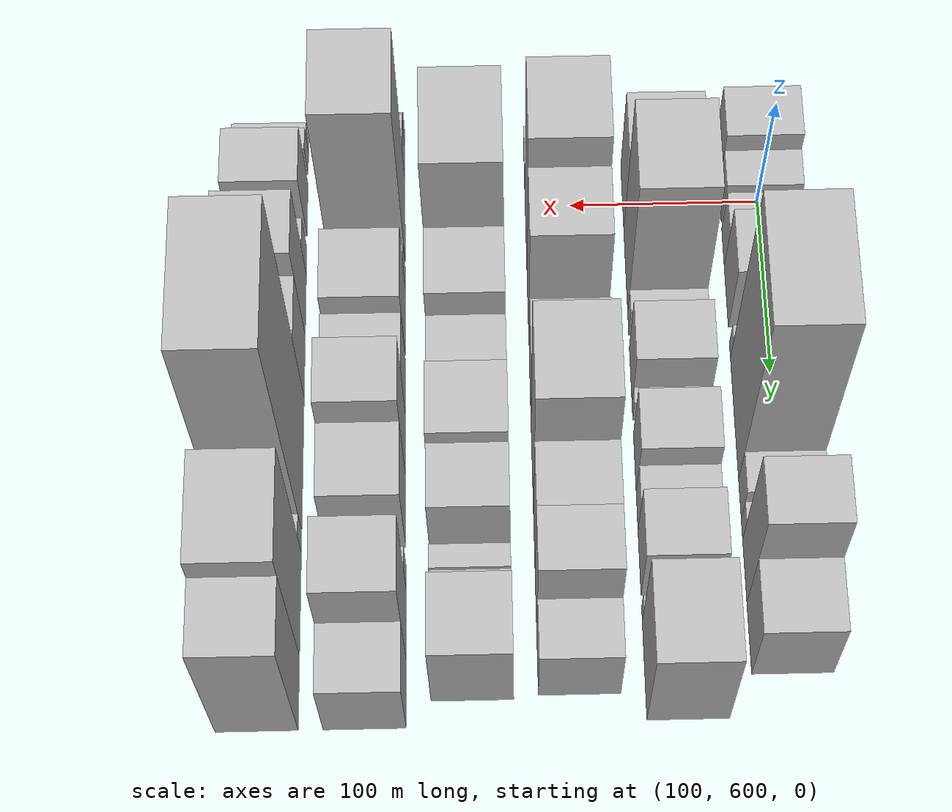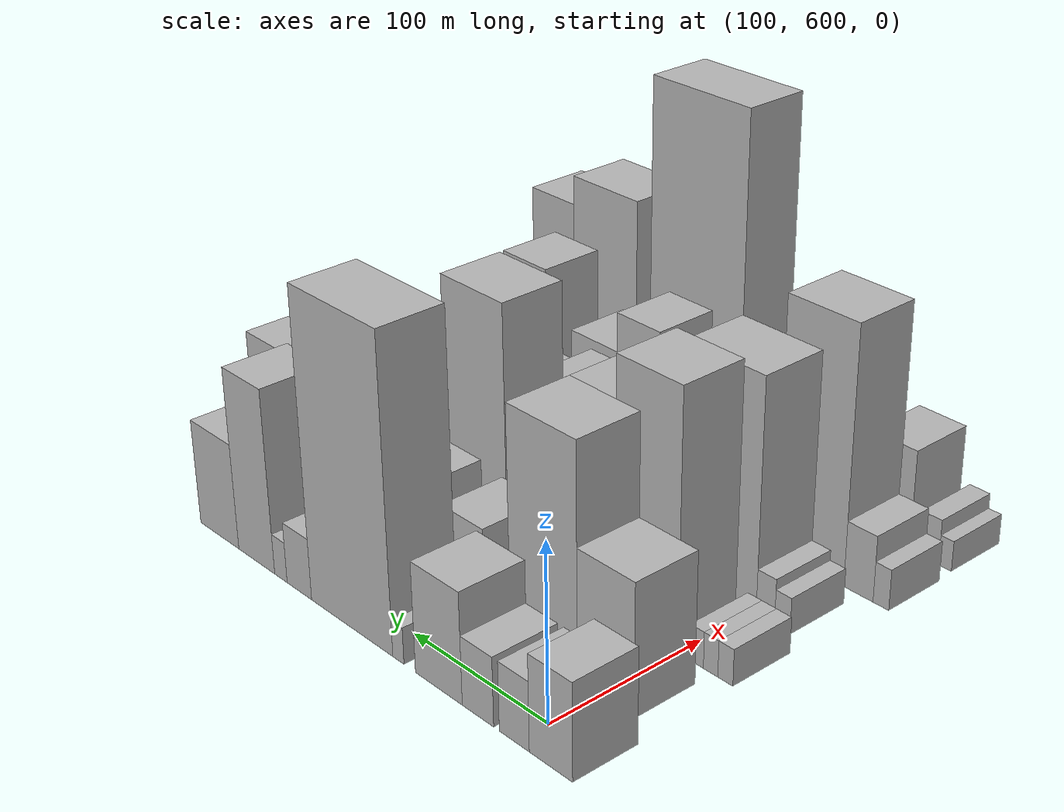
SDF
<sdf version="1.6">
 <world name="default">
  <model name="building_42">
   <static>1</static>
   <pose>100.0000 575.8657 0 0.000000 0.000000 0.000000</pose>
   <link name="link">
    <pose>0 0 27.00 0 0 0</pose>
    <collision name="collision"><geometry><box><size>40.0000 29.3480 54.0000</size></box></geometry></collision>
    <visual name="visual">
     <cast_shadows>0</cast_shadows>
     <geometry><box><size>40.0000 29.3480 54.0000</size></box></geometry>
     <material>
      <script>
       <uri>model://HANNAS_wall/materials/scripts</uri>
       <uri>model://HANNAS_wall/materials/textures</uri>
       <name>vrc/HANNAS_wall</name>
      </script>
     </material>
    </visual>
   </link>
  </model>
  <model name="building_43">
   <static>1</static>
   <pose>100.0000 601.0527 0 0.000000 0.000000 0.000000</pose>
   <link name="link">
    <pose>0 0 19.50 0 0 0</pose>
    <collision name="collision"><geometry><box><size>40.0000 21.0259 39.0000</size></box></geometry></collision>
    <visual name="visual">
     <cast_shadows>0</cast_shadows>
     <geometry><box><size>40.0000 21.0259 39.0000</size></box></geometry>
     <material>
      <script>
       <uri>model://HANNAS_wall/materials/scripts</uri>
       <uri>model://HANNAS_wall/materials/textures</uri>
       <name>vrc/HANNAS_wall</name>
      </script>
     </material>
    </visual>
   </link>
  </model>
  <model name="building_44">
   <static>1</static>
   <pose>100.0000 627.0009 0 0.000000 0.000000 0.000000</pose>
   <link name="link">
    <pose>0 0 19.50 0 0 0</pose>
    <collision name="collision"><geometry><box><size>40.0000 22.8707 39.0000</size></box></geometry></collision>
    <visual name="visual">
     <cast_shadows>0</cast_shadows>
     <geometry><box><size>40.0000 22.8707 39.0000</size></box></geometry>
     <material>
      <script>
       <uri>model://HANNAS_wall/materials/scripts</uri>
       <uri>model://HANNAS_wall/materials/textures</uri>
       <name>vrc/HANNAS_wall</name>
      </script>
     </material>
    </visual>
   </link>
  </model>
  <model name="building_45">
   <static>1</static>
   <pose>100.0000 656.1416 0 0.000000 0.000000 0.000000</pose>
   <link name="link">
    <pose>0 0 31.50 0 0 0</pose>
    <collision name="collision"><geometry><box><size>40.0000 35.4108 63.0000</size></box></geometry></collision>
    <visual name="visual">
     <cast_shadows>0</cast_shadows>
     <geometry><box><size>40.0000 35.4108 63.0000</size></box></geometry>
     <material>
      <script>
       <uri>model://HANNAS_wall/materials/scripts</uri>
       <uri>model://HANNAS_wall/materials/textures</uri>
       <name>vrc/HANNAS_wall</name>
      </script>
     </material>
    </visual>
   </link>
  </model>
  <model name="building_46">
   <static>1</static>
   <pose>100.0000 687.2384 0 0.000000 0.000000 0.000000</pose>
   <link name="link">
    <pose>0 0 10.50 0 0 0</pose>
    <collision name="collision"><geometry><box><size>40.0000 8.7828 21.0000</size></box></geometry></collision>
    <visual name="visual">
     <cast_shadows>0</cast_shadows>
     <geometry><box><size>40.0000 8.7828 21.0000</size></box></geometry>
     <material>
      <script>
       <uri>model://HANNAS_wall/materials/scripts</uri>
       <uri>model://HANNAS_wall/materials/textures</uri>
       <name>vrc/HANNAS_wall</name>
      </script>
     </material>
    </visual>
   </link>
  </model>
  <model name="building_47">
   <static>1</static>
   <pose>100.0000 725.3479 0 0.000000 0.000000 0.000000</pose>
   <link name="link">
    <pose>0 0 88.50 0 0 0</pose>
    <collision name="collision"><geometry><box><size>40.0000 67.4363 177.0000</size></box></geometry></collision>
    <visual name="visual">
     <cast_shadows>0</cast_shadows>
     <geometry><box><size>40.0000 67.4363 177.0000</size></box></geometry>
     <material>
      <script>
       <uri>model://HANNAS_wall/materials/scripts</uri>
       <uri>model://HANNAS_wall/materials/textures</uri>
       <name>vrc/HANNAS_wall</name>
      </script>
     </material>
    </visual>
   </link>
  </model>
  <model name="building_48">
   <static>1</static>
   <pose>100.0000 769.8377 0 0.000000 0.000000 0.000000</pose>
   <link name="link">
    <pose>0 0 18.00 0 0 0</pose>
    <collision name="collision"><geometry><box><size>40.0000 21.5433 36.0000</size></box></geometry></collision>
    <visual name="visual">
     <cast_shadows>0</cast_shadows>
     <geometry><box><size>40.0000 21.5433 36.0000</size></box></geometry>
     <material>
      <script>
       <uri>model://HANNAS_wall/materials/scripts</uri>
       <uri>model://HANNAS_wall/materials/textures</uri>
       <name>vrc/HANNAS_wall</name>
      </script>
     </material>
    </visual>
   </link>
  </model>
  <model name="building_49">
   <static>1</static>
   <pose>100.0000 786.1714 0 0.000000 0.000000 0.000000</pose>
   <link name="link">
    <pose>0 0 12.00 0 0 0</pose>
    <collision name="collision"><geometry><box><size>40.0000 11.1240 24.0000</size></box></geometry></collision>
    <visual name="visual">
     <cast_shadows>0</cast_shadows>
     <geometry><box><size>40.0000 11.1240 24.0000</size></box></geometry>
     <material>
      <script>
       <uri>model://HANNAS_wall/materials/scripts</uri>
       <uri>model://HANNAS_wall/materials/textures</uri>
       <name>vrc/HANNAS_wall</name>
      </script>
     </material>
    </visual>
   </link>
  </model>
  <model name="building_50">
   <static>1</static>
   <pose>100.0000 808.2883 0 0.000000 0.000000 0.000000</pose>
   <link name="link">
    <pose>0 0 54.00 0 0 0</pose>
    <collision name="collision"><geometry><box><size>40.0000 33.1097 108.0000</size></box></geometry></collision>
    <visual name="visual">
     <cast_shadows>0</cast_shadows>
     <geometry><box><size>40.0000 33.1097 108.0000</size></box></geometry>
     <material>
      <script>
       <uri>model://HANNAS_wall/materials/scripts</uri>
       <uri>model://HANNAS_wall/materials/textures</uri>
       <name>vrc/HANNAS_wall</name>
      </script>
     </material>
    </visual>
   </link>
  </model>
  <model name="building_51">
   <static>1</static>
   <pose>100.0000 843.0996 0 0.000000 0.000000 0.000000</pose>
   <link name="link">
    <pose>0 0 31.50 0 0 0</pose>
    <collision name="collision"><geometry><box><size>40.0000 36.5130 63.0000</size></box></geometry></collision>
    <visual name="visual">
     <cast_shadows>0</cast_shadows>
     <geometry><box><size>40.0000 36.5130 63.0000</size></box></geometry>
     <material>
      <script>
       <uri>model://HANNAS_wall/materials/scripts</uri>
       <uri>model://HANNAS_wall/materials/textures</uri>
       <name>vrc/HANNAS_wall</name>
      </script>
     </material>
    </visual>
   </link>
  </model>
  <model name="building_91">
   <static>1</static>
   <pose>152.0000 595.9868 0 0.000000 0.000000 0.000000</pose>
   <link name="link">
    <pose>0 0 37.50 0 0 0</pose>
    <collision name="collision"><geometry><box><size>40.0000 39.2397 75.0000</size></box></geometry></collision>
    <visual name="visual">
     <cast_shadows>0</cast_shadows>
     <geometry><box><size>40.0000 39.2397 75.0000</size></box></geometry>
     <material>
      <script>
       <uri>model://HANNAS_wall/materials/scripts</uri>
       <uri>model://HANNAS_wall/materials/textures</uri>
       <name>vrc/HANNAS_wall</name>
      </script>
     </material>
    </visual>
   </link>
  </model>
  <model name="building_92">
   <static>1</static>
   <pose>152.0000 640.0116 0 0.000000 0.000000 0.000000</pose>
   <link name="link">
    <pose>0 0 66.00 0 0 0</pose>
    <collision name="collision"><geometry><box><size>40.0000 48.8098 132.0000</size></box></geometry></collision>
    <visual name="visual">
     <cast_shadows>0</cast_shadows>
     <geometry><box><size>40.0000 48.8098 132.0000</size></box></geometry>
     <material>
      <script>
       <uri>model://HANNAS_wall/materials/scripts</uri>
       <uri>model://HANNAS_wall/materials/textures</uri>
       <name>vrc/HANNAS_wall</name>
      </script>
     </material>
    </visual>
   </link>
  </model>
  <model name="building_93">
   <static>1</static>
   <pose>152.0000 670.8228 0 0.000000 0.000000 0.000000</pose>
   <link name="link">
    <pose>0 0 13.50 0 0 0</pose>
    <collision name="collision"><geometry><box><size>40.0000 12.8127 27.0000</size></box></geometry></collision>
    <visual name="visual">
     <cast_shadows>0</cast_shadows>
     <geometry><box><size>40.0000 12.8127 27.0000</size></box></geometry>
     <material>
      <script>
       <uri>model://HANNAS_wall/materials/scripts</uri>
       <uri>model://HANNAS_wall/materials/textures</uri>
       <name>vrc/HANNAS_wall</name>
      </script>
     </material>
    </visual>
   </link>
  </model>
  <model name="building_94">
   <static>1</static>
   <pose>152.0000 700.2923 0 0.000000 0.000000 0.000000</pose>
   <link name="link">
    <pose>0 0 27.00 0 0 0</pose>
    <collision name="collision"><geometry><box><size>40.0000 32.1263 54.0000</size></box></geometry></collision>
    <visual name="visual">
     <cast_shadows>0</cast_shadows>
     <geometry><box><size>40.0000 32.1263 54.0000</size></box></geometry>
     <material>
      <script>
       <uri>model://HANNAS_wall/materials/scripts</uri>
       <uri>model://HANNAS_wall/materials/textures</uri>
       <name>vrc/HANNAS_wall</name>
      </script>
     </material>
    </visual>
   </link>
  </model>
  <model name="building_95">
   <static>1</static>
   <pose>152.0000 720.7714 0 0.000000 0.000000 0.000000</pose>
   <link name="link">
    <pose>0 0 10.50 0 0 0</pose>
    <collision name="collision"><geometry><box><size>40.0000 8.8319 21.0000</size></box></geometry></collision>
    <visual name="visual">
     <cast_shadows>0</cast_shadows>
     <geometry><box><size>40.0000 8.8319 21.0000</size></box></geometry>
     <material>
      <script>
       <uri>model://HANNAS_wall/materials/scripts</uri>
       <uri>model://HANNAS_wall/materials/textures</uri>
       <name>vrc/HANNAS_wall</name>
      </script>
     </material>
    </visual>
   </link>
  </model>
  <model name="building_96">
   <static>1</static>
   <pose>152.0000 749.2084 0 0.000000 0.000000 0.000000</pose>
   <link name="link">
    <pose>0 0 28.50 0 0 0</pose>
    <collision name="collision"><geometry><box><size>40.0000 32.0421 57.0000</size></box></geometry></collision>
    <visual name="visual">
     <cast_shadows>0</cast_shadows>
     <geometry><box><size>40.0000 32.0421 57.0000</size></box></geometry>
     <material>
      <script>
       <uri>model://HANNAS_wall/materials/scripts</uri>
       <uri>model://HANNAS_wall/materials/textures</uri>
       <name>vrc/HANNAS_wall</name>
      </script>
     </material>
    </visual>
   </link>
  </model>
  <model name="building_97">
   <static>1</static>
   <pose>152.0000 775.6037 0 0.000000 0.000000 0.000000</pose>
   <link name="link">
    <pose>0 0 18.00 0 0 0</pose>
    <collision name="collision"><geometry><box><size>40.0000 20.7485 36.0000</size></box></geometry></collision>
    <visual name="visual">
     <cast_shadows>0</cast_shadows>
     <geometry><box><size>40.0000 20.7485 36.0000</size></box></geometry>
     <material>
      <script>
       <uri>model://HANNAS_wall/materials/scripts</uri>
       <uri>model://HANNAS_wall/materials/textures</uri>
       <name>vrc/HANNAS_wall</name>
      </script>
     </material>
    </visual>
   </link>
  </model>
  <model name="building_98">
   <static>1</static>
   <pose>152.0000 802.9114 0 0.000000 0.000000 0.000000</pose>
   <link name="link">
    <pose>0 0 28.50 0 0 0</pose>
    <collision name="collision"><geometry><box><size>40.0000 33.8669 57.0000</size></box></geometry></collision>
    <visual name="visual">
     <cast_shadows>0</cast_shadows>
     <geometry><box><size>40.0000 33.8669 57.0000</size></box></geometry>
     <material>
      <script>
       <uri>model://HANNAS_wall/materials/scripts</uri>
       <uri>model://HANNAS_wall/materials/textures</uri>
       <name>vrc/HANNAS_wall</name>
      </script>
     </material>
    </visual>
   </link>
  </model>
  <model name="building_99">
   <static>1</static>
   <pose>152.0000 829.7463 0 0.000000 0.000000 0.000000</pose>
   <link name="link">
    <pose>0 0 9.00 0 0 0</pose>
    <collision name="collision"><geometry><box><size>40.0000 7.8029 18.0000</size></box></geometry></collision>
    <visual name="visual">
     <cast_shadows>0</cast_shadows>
     <geometry><box><size>40.0000 7.8029 18.0000</size></box></geometry>
     <material>
      <script>
       <uri>model://HANNAS_wall/materials/scripts</uri>
       <uri>model://HANNAS_wall/materials/textures</uri>
       <name>vrc/HANNAS_wall</name>
      </script>
     </material>
    </visual>
   </link>
  </model>
  <model name="building_100">
   <static>1</static>
   <pose>152.0000 858.4060 0 0.000000 0.000000 0.000000</pose>
   <link name="link">
    <pose>0 0 45.00 0 0 0</pose>
    <collision name="collision"><geometry><box><size>40.0000 49.5165 90.0000</size></box></geometry></collision>
    <visual name="visual">
     <cast_shadows>0</cast_shadows>
     <geometry><box><size>40.0000 49.5165 90.0000</size></box></geometry>
     <material>
      <script>
       <uri>model://HANNAS_wall/materials/scripts</uri>
       <uri>model://HANNAS_wall/materials/textures</uri>
       <name>vrc/HANNAS_wall</name>
      </script>
     </material>
    </visual>
   </link>
  </model>
  <model name="building_141">
   <static>1</static>
   <pose>204.0000 567.9063 0 0.000000 0.000000 0.000000</pose>
   <link name="link">
    <pose>0 0 10.50 0 0 0</pose>
    <collision name="collision"><geometry><box><size>40.0000 9.9896 21.0000</size></box></geometry></collision>
    <visual name="visual">
     <cast_shadows>0</cast_shadows>
     <geometry><box><size>40.0000 9.9896 21.0000</size></box></geometry>
     <material>
      <script>
       <uri>model://HANNAS_wall/materials/scripts</uri>
       <uri>model://HANNAS_wall/materials/textures</uri>
       <name>vrc/HANNAS_wall</name>
      </script>
     </material>
    </visual>
   </link>
  </model>
  <model name="building_142">
   <static>1</static>
   <pose>204.0000 577.7496 0 0.000000 0.000000 0.000000</pose>
   <link name="link">
    <pose>0 0 10.50 0 0 0</pose>
    <collision name="collision"><geometry><box><size>40.0000 9.6970 21.0000</size></box></geometry></collision>
    <visual name="visual">
     <cast_shadows>0</cast_shadows>
     <geometry><box><size>40.0000 9.6970 21.0000</size></box></geometry>
     <material>
      <script>
       <uri>model://HANNAS_wall/materials/scripts</uri>
       <uri>model://HANNAS_wall/materials/textures</uri>
       <name>vrc/HANNAS_wall</name>
      </script>
     </material>
    </visual>
   </link>
  </model>
  <model name="building_143">
   <static>1</static>
   <pose>204.0000 587.3101 0 0.000000 0.000000 0.000000</pose>
   <link name="link">
    <pose>0 0 10.50 0 0 0</pose>
    <collision name="collision"><geometry><box><size>40.0000 9.4239 21.0000</size></box></geometry></collision>
    <visual name="visual">
     <cast_shadows>0</cast_shadows>
     <geometry><box><size>40.0000 9.4239 21.0000</size></box></geometry>
     <material>
      <script>
       <uri>model://HANNAS_wall/materials/scripts</uri>
       <uri>model://HANNAS_wall/materials/textures</uri>
       <name>vrc/HANNAS_wall</name>
      </script>
     </material>
    </visual>
   </link>
  </model>
  <model name="building_144">
   <static>1</static>
   <pose>204.0000 622.4460 0 0.000000 0.000000 0.000000</pose>
   <link name="link">
    <pose>0 0 73.50 0 0 0</pose>
    <collision name="collision"><geometry><box><size>40.0000 44.8478 147.0000</size></box></geometry></collision>
    <visual name="visual">
     <cast_shadows>0</cast_shadows>
     <geometry><box><size>40.0000 44.8478 147.0000</size></box></geometry>
     <material>
      <script>
       <uri>model://HANNAS_wall/materials/scripts</uri>
       <uri>model://HANNAS_wall/materials/textures</uri>
       <name>vrc/HANNAS_wall</name>
      </script>
     </material>
    </visual>
   </link>
  </model>
  <model name="building_145">
   <static>1</static>
   <pose>204.0000 663.4067 0 0.000000 0.000000 0.000000</pose>
   <link name="link">
    <pose>0 0 60.00 0 0 0</pose>
    <collision name="collision"><geometry><box><size>40.0000 37.0736 120.0000</size></box></geometry></collision>
    <visual name="visual">
     <cast_shadows>0</cast_shadows>
     <geometry><box><size>40.0000 37.0736 120.0000</size></box></geometry>
     <material>
      <script>
       <uri>model://HANNAS_wall/materials/scripts</uri>
       <uri>model://HANNAS_wall/materials/textures</uri>
       <name>vrc/HANNAS_wall</name>
      </script>
     </material>
    </visual>
   </link>
  </model>
  <model name="building_146">
   <static>1</static>
   <pose>204.0000 706.4020 0 0.000000 0.000000 0.000000</pose>
   <link name="link">
    <pose>0 0 33.00 0 0 0</pose>
    <collision name="collision"><geometry><box><size>40.0000 36.9171 66.0000</size></box></geometry></collision>
    <visual name="visual">
     <cast_shadows>0</cast_shadows>
     <geometry><box><size>40.0000 36.9171 66.0000</size></box></geometry>
     <material>
      <script>
       <uri>model://HANNAS_wall/materials/scripts</uri>
       <uri>model://HANNAS_wall/materials/textures</uri>
       <name>vrc/HANNAS_wall</name>
      </script>
     </material>
    </visual>
   </link>
  </model>
  <model name="building_147">
   <static>1</static>
   <pose>204.0000 752.2710 0 0.000000 0.000000 0.000000</pose>
   <link name="link">
    <pose>0 0 72.00 0 0 0</pose>
    <collision name="collision"><geometry><box><size>40.0000 48.8209 144.0000</size></box></geometry></collision>
    <visual name="visual">
     <cast_shadows>0</cast_shadows>
     <geometry><box><size>40.0000 48.8209 144.0000</size></box></geometry>
     <material>
      <script>
       <uri>model://HANNAS_wall/materials/scripts</uri>
       <uri>model://HANNAS_wall/materials/textures</uri>
       <name>vrc/HANNAS_wall</name>
      </script>
     </material>
    </visual>
   </link>
  </model>
  <model name="building_148">
   <static>1</static>
   <pose>204.0000 792.6814 0 0.000000 0.000000 0.000000</pose>
   <link name="link">
    <pose>0 0 48.00 0 0 0</pose>
    <collision name="collision"><geometry><box><size>40.0000 32.0000 96.0000</size></box></geometry></collision>
    <visual name="visual">
     <cast_shadows>0</cast_shadows>
     <geometry><box><size>40.0000 32.0000 96.0000</size></box></geometry>
     <material>
      <script>
       <uri>model://HANNAS_wall/materials/scripts</uri>
       <uri>model://HANNAS_wall/materials/textures</uri>
       <name>vrc/HANNAS_wall</name>
      </script>
     </material>
    </visual>
   </link>
  </model>
  <model name="building_149">
   <static>1</static>
   <pose>204.0000 824.4551 0 0.000000 0.000000 0.000000</pose>
   <link name="link">
    <pose>0 0 48.00 0 0 0</pose>
    <collision name="collision"><geometry><box><size>40.0000 31.5474 96.0000</size></box></geometry></collision>
    <visual name="visual">
     <cast_shadows>0</cast_shadows>
     <geometry><box><size>40.0000 31.5474 96.0000</size></box></geometry>
     <material>
      <script>
       <uri>model://HANNAS_wall/materials/scripts</uri>
       <uri>model://HANNAS_wall/materials/textures</uri>
       <name>vrc/HANNAS_wall</name>
      </script>
     </material>
    </visual>
   </link>
  </model>
  <model name="building_150">
   <static>1</static>
   <pose>204.0000 854.9163 0 0.000000 0.000000 0.000000</pose>
   <link name="link">
    <pose>0 0 28.50 0 0 0</pose>
    <collision name="collision"><geometry><box><size>40.0000 29.3750 57.0000</size></box></geometry></collision>
    <visual name="visual">
     <cast_shadows>0</cast_shadows>
     <geometry><box><size>40.0000 29.3750 57.0000</size></box></geometry>
     <material>
      <script>
       <uri>model://HANNAS_wall/materials/scripts</uri>
       <uri>model://HANNAS_wall/materials/textures</uri>
       <name>vrc/HANNAS_wall</name>
      </script>
     </material>
    </visual>
   </link>
  </model>
  <model name="building_191">
   <static>1</static>
   <pose>256.0000 579.0800 0 0.000000 0.000000 0.000000</pose>
   <link name="link">
    <pose>0 0 10.50 0 0 0</pose>
    <collision name="collision"><geometry><box><size>40.0000 10.4534 21.0000</size></box></geometry></collision>
    <visual name="visual">
     <cast_shadows>0</cast_shadows>
     <geometry><box><size>40.0000 10.4534 21.0000</size></box></geometry>
     <material>
      <script>
       <uri>model://HANNAS_wall/materials/scripts</uri>
       <uri>model://HANNAS_wall/materials/textures</uri>
       <name>vrc/HANNAS_wall</name>
      </script>
     </material>
    </visual>
   </link>
  </model>
  <model name="building_192">
   <static>1</static>
   <pose>256.0000 590.5890 0 0.000000 0.000000 0.000000</pose>
   <link name="link">
    <pose>0 0 13.50 0 0 0</pose>
    <collision name="collision"><geometry><box><size>40.0000 12.5645 27.0000</size></box></geometry></collision>
    <visual name="visual">
     <cast_shadows>0</cast_shadows>
     <geometry><box><size>40.0000 12.5645 27.0000</size></box></geometry>
     <material>
      <script>
       <uri>model://HANNAS_wall/materials/scripts</uri>
       <uri>model://HANNAS_wall/materials/textures</uri>
       <name>vrc/HANNAS_wall</name>
      </script>
     </material>
    </visual>
   </link>
  </model>
  <model name="building_193">
   <static>1</static>
   <pose>256.0000 623.5789 0 0.000000 0.000000 0.000000</pose>
   <link name="link">
    <pose>0 0 67.50 0 0 0</pose>
    <collision name="collision"><geometry><box><size>40.0000 53.4153 135.0000</size></box></geometry></collision>
    <visual name="visual">
     <cast_shadows>0</cast_shadows>
     <geometry><box><size>40.0000 53.4153 135.0000</size></box></geometry>
     <material>
      <script>
       <uri>model://HANNAS_wall/materials/scripts</uri>
       <uri>model://HANNAS_wall/materials/textures</uri>
       <name>vrc/HANNAS_wall</name>
      </script>
     </material>
    </visual>
   </link>
  </model>
  <model name="building_194">
   <static>1</static>
   <pose>256.0000 668.5747 0 0.000000 0.000000 0.000000</pose>
   <link name="link">
    <pose>0 0 36.00 0 0 0</pose>
    <collision name="collision"><geometry><box><size>40.0000 36.5762 72.0000</size></box></geometry></collision>
    <visual name="visual">
     <cast_shadows>0</cast_shadows>
     <geometry><box><size>40.0000 36.5762 72.0000</size></box></geometry>
     <material>
      <script>
       <uri>model://HANNAS_wall/materials/scripts</uri>
       <uri>model://HANNAS_wall/materials/textures</uri>
       <name>vrc/HANNAS_wall</name>
      </script>
     </material>
    </visual>
   </link>
  </model>
  <model name="building_195">
   <static>1</static>
   <pose>256.0000 699.4970 0 0.000000 0.000000 0.000000</pose>
   <link name="link">
    <pose>0 0 24.00 0 0 0</pose>
    <collision name="collision"><geometry><box><size>40.0000 25.2684 48.0000</size></box></geometry></collision>
    <visual name="visual">
     <cast_shadows>0</cast_shadows>
     <geometry><box><size>40.0000 25.2684 48.0000</size></box></geometry>
     <material>
      <script>
       <uri>model://HANNAS_wall/materials/scripts</uri>
       <uri>model://HANNAS_wall/materials/textures</uri>
       <name>vrc/HANNAS_wall</name>
      </script>
     </material>
    </visual>
   </link>
  </model>
  <model name="building_196">
   <static>1</static>
   <pose>256.0000 720.9371 0 0.000000 0.000000 0.000000</pose>
   <link name="link">
    <pose>0 0 9.00 0 0 0</pose>
    <collision name="collision"><geometry><box><size>40.0000 7.6116 18.0000</size></box></geometry></collision>
    <visual name="visual">
     <cast_shadows>0</cast_shadows>
     <geometry><box><size>40.0000 7.6116 18.0000</size></box></geometry>
     <material>
      <script>
       <uri>model://HANNAS_wall/materials/scripts</uri>
       <uri>model://HANNAS_wall/materials/textures</uri>
       <name>vrc/HANNAS_wall</name>
      </script>
     </material>
    </visual>
   </link>
  </model>
  <model name="building_197">
   <static>1</static>
   <pose>256.0000 743.6201 0 0.000000 0.000000 0.000000</pose>
   <link name="link">
    <pose>0 0 37.50 0 0 0</pose>
    <collision name="collision"><geometry><box><size>40.0000 37.7544 75.0000</size></box></geometry></collision>
    <visual name="visual">
     <cast_shadows>0</cast_shadows>
     <geometry><box><size>40.0000 37.7544 75.0000</size></box></geometry>
     <material>
      <script>
       <uri>model://HANNAS_wall/materials/scripts</uri>
       <uri>model://HANNAS_wall/materials/textures</uri>
       <name>vrc/HANNAS_wall</name>
      </script>
     </material>
    </visual>
   </link>
  </model>
  <model name="building_198">
   <static>1</static>
   <pose>256.0000 779.0119 0 0.000000 0.000000 0.000000</pose>
   <link name="link">
    <pose>0 0 31.50 0 0 0</pose>
    <collision name="collision"><geometry><box><size>40.0000 33.0291 63.0000</size></box></geometry></collision>
    <visual name="visual">
     <cast_shadows>0</cast_shadows>
     <geometry><box><size>40.0000 33.0291 63.0000</size></box></geometry>
     <material>
      <script>
       <uri>model://HANNAS_wall/materials/scripts</uri>
       <uri>model://HANNAS_wall/materials/textures</uri>
       <name>vrc/HANNAS_wall</name>
      </script>
     </material>
    </visual>
   </link>
  </model>
  <model name="building_199">
   <static>1</static>
   <pose>256.0000 806.6822 0 0.000000 0.000000 0.000000</pose>
   <link name="link">
    <pose>0 0 13.50 0 0 0</pose>
    <collision name="collision"><geometry><box><size>40.0000 12.3115 27.0000</size></box></geometry></collision>
    <visual name="visual">
     <cast_shadows>0</cast_shadows>
     <geometry><box><size>40.0000 12.3115 27.0000</size></box></geometry>
     <material>
      <script>
       <uri>model://HANNAS_wall/materials/scripts</uri>
       <uri>model://HANNAS_wall/materials/textures</uri>
       <name>vrc/HANNAS_wall</name>
      </script>
     </material>
    </visual>
   </link>
  </model>
  <model name="building_200">
   <static>1</static>
   <pose>256.0000 818.4811 0 0.000000 0.000000 0.000000</pose>
   <link name="link">
    <pose>0 0 12.00 0 0 0</pose>
    <collision name="collision"><geometry><box><size>40.0000 11.2862 24.0000</size></box></geometry></collision>
    <visual name="visual">
     <cast_shadows>0</cast_shadows>
     <geometry><box><size>40.0000 11.2862 24.0000</size></box></geometry>
     <material>
      <script>
       <uri>model://HANNAS_wall/materials/scripts</uri>
       <uri>model://HANNAS_wall/materials/textures</uri>
       <name>vrc/HANNAS_wall</name>
      </script>
     </material>
    </visual>
   </link>
  </model>
  <model name="building_201">
   <static>1</static>
   <pose>256.0000 851.2816 0 0.000000 0.000000 0.000000</pose>
   <link name="link">
    <pose>0 0 36.00 0 0 0</pose>
    <collision name="collision"><geometry><box><size>40.0000 40.3148 72.0000</size></box></geometry></collision>
    <visual name="visual">
     <cast_shadows>0</cast_shadows>
     <geometry><box><size>40.0000 40.3148 72.0000</size></box></geometry>
     <material>
      <script>
       <uri>model://HANNAS_wall/materials/scripts</uri>
       <uri>model://HANNAS_wall/materials/textures</uri>
       <name>vrc/HANNAS_wall</name>
      </script>
     </material>
    </visual>
   </link>
  </model>
  <model name="building_240">
   <static>1</static>
   <pose>308.0000 559.5195 0 0.000000 0.000000 0.000000</pose>
   <link name="link">
    <pose>0 0 12.00 0 0 0</pose>
    <collision name="collision"><geometry><box><size>40.0000 10.3501 24.0000</size></box></geometry></collision>
    <visual name="visual">
     <cast_shadows>0</cast_shadows>
     <geometry><box><size>40.0000 10.3501 24.0000</size></box></geometry>
     <material>
      <script>
       <uri>model://HANNAS_wall/materials/scripts</uri>
       <uri>model://HANNAS_wall/materials/textures</uri>
       <name>vrc/HANNAS_wall</name>
      </script>
     </material>
    </visual>
   </link>
  </model>
  <model name="building_241">
   <static>1</static>
   <pose>308.0000 574.4995 0 0.000000 0.000000 0.000000</pose>
   <link name="link">
    <pose>0 0 19.50 0 0 0</pose>
    <collision name="collision"><geometry><box><size>40.0000 19.6100 39.0000</size></box></geometry></collision>
    <visual name="visual">
     <cast_shadows>0</cast_shadows>
     <geometry><box><size>40.0000 19.6100 39.0000</size></box></geometry>
     <material>
      <script>
       <uri>model://HANNAS_wall/materials/scripts</uri>
       <uri>model://HANNAS_wall/materials/textures</uri>
       <name>vrc/HANNAS_wall</name>
      </script>
     </material>
    </visual>
   </link>
  </model>
  <model name="building_242">
   <static>1</static>
   <pose>308.0000 607.8872 0 0.000000 0.000000 0.000000</pose>
   <link name="link">
    <pose>0 0 75.00 0 0 0</pose>
    <collision name="collision"><geometry><box><size>40.0000 47.1655 150.0000</size></box></geometry></collision>
    <visual name="visual">
     <cast_shadows>0</cast_shadows>
     <geometry><box><size>40.0000 47.1655 150.0000</size></box></geometry>
     <material>
      <script>
       <uri>model://HANNAS_wall/materials/scripts</uri>
       <uri>model://HANNAS_wall/materials/textures</uri>
       <name>vrc/HANNAS_wall</name>
      </script>
     </material>
    </visual>
   </link>
  </model>
  <model name="building_243">
   <static>1</static>
   <pose>308.0000 641.8456 0 0.000000 0.000000 0.000000</pose>
   <link name="link">
    <pose>0 0 13.50 0 0 0</pose>
    <collision name="collision"><geometry><box><size>40.0000 12.7513 27.0000</size></box></geometry></collision>
    <visual name="visual">
     <cast_shadows>0</cast_shadows>
     <geometry><box><size>40.0000 12.7513 27.0000</size></box></geometry>
     <material>
      <script>
       <uri>model://HANNAS_wall/materials/scripts</uri>
       <uri>model://HANNAS_wall/materials/textures</uri>
       <name>vrc/HANNAS_wall</name>
      </script>
     </material>
    </visual>
   </link>
  </model>
  <model name="building_244">
   <static>1</static>
   <pose>308.0000 667.3238 0 0.000000 0.000000 0.000000</pose>
   <link name="link">
    <pose>0 0 34.50 0 0 0</pose>
    <collision name="collision"><geometry><box><size>40.0000 38.2052 69.0000</size></box></geometry></collision>
    <visual name="visual">
     <cast_shadows>0</cast_shadows>
     <geometry><box><size>40.0000 38.2052 69.0000</size></box></geometry>
     <material>
      <script>
       <uri>model://HANNAS_wall/materials/scripts</uri>
       <uri>model://HANNAS_wall/materials/textures</uri>
       <name>vrc/HANNAS_wall</name>
      </script>
     </material>
    </visual>
   </link>
  </model>
  <model name="building_245">
   <static>1</static>
   <pose>308.0000 705.2660 0 0.000000 0.000000 0.000000</pose>
   <link name="link">
    <pose>0 0 28.50 0 0 0</pose>
    <collision name="collision"><geometry><box><size>40.0000 31.6792 57.0000</size></box></geometry></collision>
    <visual name="visual">
     <cast_shadows>0</cast_shadows>
     <geometry><box><size>40.0000 31.6792 57.0000</size></box></geometry>
     <material>
      <script>
       <uri>model://HANNAS_wall/materials/scripts</uri>
       <uri>model://HANNAS_wall/materials/textures</uri>
       <name>vrc/HANNAS_wall</name>
      </script>
     </material>
    </visual>
   </link>
  </model>
  <model name="building_246">
   <static>1</static>
   <pose>308.0000 737.8741 0 0.000000 0.000000 0.000000</pose>
   <link name="link">
    <pose>0 0 48.00 0 0 0</pose>
    <collision name="collision"><geometry><box><size>40.0000 33.5370 96.0000</size></box></geometry></collision>
    <visual name="visual">
     <cast_shadows>0</cast_shadows>
     <geometry><box><size>40.0000 33.5370 96.0000</size></box></geometry>
     <material>
      <script>
       <uri>model://HANNAS_wall/materials/scripts</uri>
       <uri>model://HANNAS_wall/materials/textures</uri>
       <name>vrc/HANNAS_wall</name>
      </script>
     </material>
    </visual>
   </link>
  </model>
  <model name="building_247">
   <static>1</static>
   <pose>308.0000 773.4510 0 0.000000 0.000000 0.000000</pose>
   <link name="link">
    <pose>0 0 36.00 0 0 0</pose>
    <collision name="collision"><geometry><box><size>40.0000 37.6169 72.0000</size></box></geometry></collision>
    <visual name="visual">
     <cast_shadows>0</cast_shadows>
     <geometry><box><size>40.0000 37.6169 72.0000</size></box></geometry>
     <material>
      <script>
       <uri>model://HANNAS_wall/materials/scripts</uri>
       <uri>model://HANNAS_wall/materials/textures</uri>
       <name>vrc/HANNAS_wall</name>
      </script>
     </material>
    </visual>
   </link>
  </model>
  <model name="building_248">
   <static>1</static>
   <pose>308.0000 807.6268 0 0.000000 0.000000 0.000000</pose>
   <link name="link">
    <pose>0 0 13.50 0 0 0</pose>
    <collision name="collision"><geometry><box><size>40.0000 12.7349 27.0000</size></box></geometry></collision>
    <visual name="visual">
     <cast_shadows>0</cast_shadows>
     <geometry><box><size>40.0000 12.7349 27.0000</size></box></geometry>
     <material>
      <script>
       <uri>model://HANNAS_wall/materials/scripts</uri>
       <uri>model://HANNAS_wall/materials/textures</uri>
       <name>vrc/HANNAS_wall</name>
      </script>
     </material>
    </visual>
   </link>
  </model>
  <model name="building_249">
   <static>1</static>
   <pose>308.0000 832.3314 0 0.000000 0.000000 0.000000</pose>
   <link name="link">
    <pose>0 0 51.00 0 0 0</pose>
    <collision name="collision"><geometry><box><size>40.0000 36.6742 102.0000</size></box></geometry></collision>
    <visual name="visual">
     <cast_shadows>0</cast_shadows>
     <geometry><box><size>40.0000 36.6742 102.0000</size></box></geometry>
     <material>
      <script>
       <uri>model://HANNAS_wall/materials/scripts</uri>
       <uri>model://HANNAS_wall/materials/textures</uri>
       <name>vrc/HANNAS_wall</name>
      </script>
     </material>
    </visual>
   </link>
  </model>
  <model name="building_250">
   <static>1</static>
   <pose>308.0000 867.6151 0 0.000000 0.000000 0.000000</pose>
   <link name="link">
    <pose>0 0 30.00 0 0 0</pose>
    <collision name="collision"><geometry><box><size>40.0000 33.8932 60.0000</size></box></geometry></collision>
    <visual name="visual">
     <cast_shadows>0</cast_shadows>
     <geometry><box><size>40.0000 33.8932 60.0000</size></box></geometry>
     <material>
      <script>
       <uri>model://HANNAS_wall/materials/scripts</uri>
       <uri>model://HANNAS_wall/materials/textures</uri>
       <name>vrc/HANNAS_wall</name>
      </script>
     </material>
    </visual>
   </link>
  </model>
  <model name="building_298">
   <static>1</static>
   <pose>360.0000 560.1914 0 0.000000 0.000000 0.000000</pose>
   <link name="link">
    <pose>0 0 9.00 0 0 0</pose>
    <collision name="collision"><geometry><box><size>40.0000 8.5495 18.0000</size></box></geometry></collision>
    <visual name="visual">
     <cast_shadows>0</cast_shadows>
     <geometry><box><size>40.0000 8.5495 18.0000</size></box></geometry>
     <material>
      <script>
       <uri>model://HANNAS_wall/materials/scripts</uri>
       <uri>model://HANNAS_wall/materials/textures</uri>
       <name>vrc/HANNAS_wall</name>
      </script>
     </material>
    </visual>
   </link>
  </model>
  <model name="building_299">
   <static>1</static>
   <pose>360.0000 571.1206 0 0.000000 0.000000 0.000000</pose>
   <link name="link">
    <pose>0 0 13.50 0 0 0</pose>
    <collision name="collision"><geometry><box><size>40.0000 13.3090 27.0000</size></box></geometry></collision>
    <visual name="visual">
     <cast_shadows>0</cast_shadows>
     <geometry><box><size>40.0000 13.3090 27.0000</size></box></geometry>
     <material>
      <script>
       <uri>model://HANNAS_wall/materials/scripts</uri>
       <uri>model://HANNAS_wall/materials/textures</uri>
       <name>vrc/HANNAS_wall</name>
      </script>
     </material>
    </visual>
   </link>
  </model>
  <model name="building_300">
   <static>1</static>
   <pose>360.0000 599.5268 0 0.000000 0.000000 0.000000</pose>
   <link name="link">
    <pose>0 0 30.00 0 0 0</pose>
    <collision name="collision"><geometry><box><size>40.0000 31.5034 60.0000</size></box></geometry></collision>
    <visual name="visual">
     <cast_shadows>0</cast_shadows>
     <geometry><box><size>40.0000 31.5034 60.0000</size></box></geometry>
     <material>
      <script>
       <uri>model://HANNAS_wall/materials/scripts</uri>
       <uri>model://HANNAS_wall/materials/textures</uri>
       <name>vrc/HANNAS_wall</name>
      </script>
     </material>
    </visual>
   </link>
  </model>
  <model name="building_301">
   <static>1</static>
   <pose>360.0000 630.6141 0 0.000000 0.000000 0.000000</pose>
   <link name="link">
    <pose>0 0 16.50 0 0 0</pose>
    <collision name="collision"><geometry><box><size>40.0000 16.6712 33.0000</size></box></geometry></collision>
    <visual name="visual">
     <cast_shadows>0</cast_shadows>
     <geometry><box><size>40.0000 16.6712 33.0000</size></box></geometry>
     <material>
      <script>
       <uri>model://HANNAS_wall/materials/scripts</uri>
       <uri>model://HANNAS_wall/materials/textures</uri>
       <name>vrc/HANNAS_wall</name>
      </script>
     </material>
    </visual>
   </link>
  </model>
  <model name="building_302">
   <static>1</static>
   <pose>360.0000 656.4666 0 0.000000 0.000000 0.000000</pose>
   <link name="link">
    <pose>0 0 46.50 0 0 0</pose>
    <collision name="collision"><geometry><box><size>40.0000 35.0337 93.0000</size></box></geometry></collision>
    <visual name="visual">
     <cast_shadows>0</cast_shadows>
     <geometry><box><size>40.0000 35.0337 93.0000</size></box></geometry>
     <material>
      <script>
       <uri>model://HANNAS_wall/materials/scripts</uri>
       <uri>model://HANNAS_wall/materials/textures</uri>
       <name>vrc/HANNAS_wall</name>
      </script>
     </material>
    </visual>
   </link>
  </model>
  <model name="building_303">
   <static>1</static>
   <pose>360.0000 691.5338 0 0.000000 0.000000 0.000000</pose>
   <link name="link">
    <pose>0 0 34.50 0 0 0</pose>
    <collision name="collision"><geometry><box><size>40.0000 35.1006 69.0000</size></box></geometry></collision>
    <visual name="visual">
     <cast_shadows>0</cast_shadows>
     <geometry><box><size>40.0000 35.1006 69.0000</size></box></geometry>
     <material>
      <script>
       <uri>model://HANNAS_wall/materials/scripts</uri>
       <uri>model://HANNAS_wall/materials/textures</uri>
       <name>vrc/HANNAS_wall</name>
      </script>
     </material>
    </visual>
   </link>
  </model>
  <model name="building_304">
   <static>1</static>
   <pose>360.0000 745.5784 0 0.000000 0.000000 0.000000</pose>
   <link name="link">
    <pose>0 0 106.50 0 0 0</pose>
    <collision name="collision"><geometry><box><size>40.0000 72.9886 213.0000</size></box></geometry></collision>
    <visual name="visual">
     <cast_shadows>0</cast_shadows>
     <geometry><box><size>40.0000 72.9886 213.0000</size></box></geometry>
     <material>
      <script>
       <uri>model://HANNAS_wall/materials/scripts</uri>
       <uri>model://HANNAS_wall/materials/textures</uri>
       <name>vrc/HANNAS_wall</name>
      </script>
     </material>
    </visual>
   </link>
  </model>
  <model name="building_305">
   <static>1</static>
   <pose>360.0000 787.9173 0 0.000000 0.000000 0.000000</pose>
   <link name="link">
    <pose>0 0 12.00 0 0 0</pose>
    <collision name="collision"><geometry><box><size>40.0000 11.6892 24.0000</size></box></geometry></collision>
    <visual name="visual">
     <cast_shadows>0</cast_shadows>
     <geometry><box><size>40.0000 11.6892 24.0000</size></box></geometry>
     <material>
      <script>
       <uri>model://HANNAS_wall/materials/scripts</uri>
       <uri>model://HANNAS_wall/materials/textures</uri>
       <name>vrc/HANNAS_wall</name>
      </script>
     </material>
    </visual>
   </link>
  </model>
  <model name="building_306">
   <static>1</static>
   <pose>360.0000 820.6777 0 0.000000 0.000000 0.000000</pose>
   <link name="link">
    <pose>0 0 67.50 0 0 0</pose>
    <collision name="collision"><geometry><box><size>40.0000 53.8316 135.0000</size></box></geometry></collision>
    <visual name="visual">
     <cast_shadows>0</cast_shadows>
     <geometry><box><size>40.0000 53.8316 135.0000</size></box></geometry>
     <material>
      <script>
       <uri>model://HANNAS_wall/materials/scripts</uri>
       <uri>model://HANNAS_wall/materials/textures</uri>
       <name>vrc/HANNAS_wall</name>
      </script>
     </material>
    </visual>
   </link>
  </model>
  <model name="building_307">
   <static>1</static>
   <pose>360.0000 866.0479 0 0.000000 0.000000 0.000000</pose>
   <link name="link">
    <pose>0 0 58.50 0 0 0</pose>
    <collision name="collision"><geometry><box><size>40.0000 36.9089 117.0000</size></box></geometry></collision>
    <visual name="visual">
     <cast_shadows>0</cast_shadows>
     <geometry><box><size>40.0000 36.9089 117.0000</size></box></geometry>
     <material>
      <script>
       <uri>model://HANNAS_wall/materials/scripts</uri>
       <uri>model://HANNAS_wall/materials/textures</uri>
       <name>vrc/HANNAS_wall</name>
      </script>
     </material>
    </visual>
   </link>
  </model>
 </world>
</sdf>
